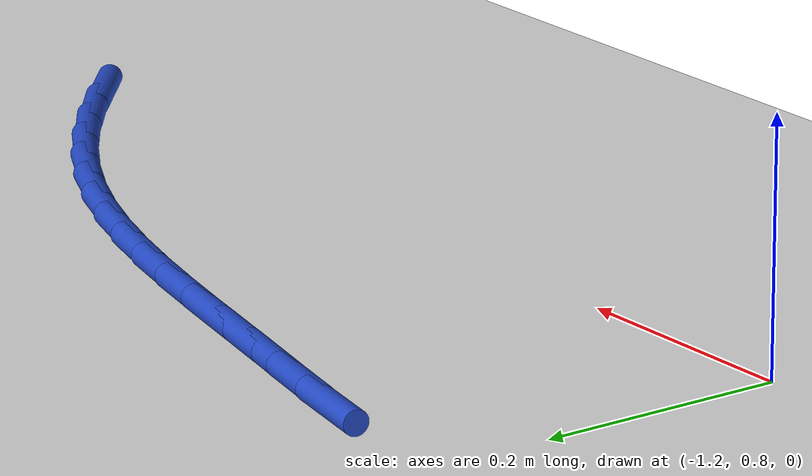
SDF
<sdf version="1.6">
 <world name="default">
  <model name="ground_plane">
   <static>1</static>
   <link name="link">
    <collision name="collision">
     <geometry><plane><normal>0 0 1</normal><size>100 100</size></plane></geometry>
     <surface><friction><ode><mu>100</mu><mu2>50</mu2></ode></friction></surface>
    </collision>
    <visual name="visual">
     <cast_shadows>0</cast_shadows>
     <geometry><plane><normal>0 0 1</normal><size>100 100</size></plane></geometry>
     <material>
      <script><uri>file://media/materials/scripts/gazebo.material</uri><name>Gazebo/WhiteGlow</name></script>
     </material>
    </visual>
   </link>
  </model>
  <model name="line">
   <link name="link_17">
    <pose>-0.35862236300749656 0.8041266889606733 0.01 0 1.57 -0.7351135516968258</pose>
    <collision name="collision">
     <geometry><cylinder><radius>0.01</radius><length>0.08</length></cylinder></geometry>
    </collision>
    <visual name="visual">
     <material>
      <script><name>Gazebo/Blue</name><uri>file://media/materials/scripts/gazebo.material</uri></script>
     </material>
     <geometry><cylinder><radius>0.01</radius><length>0.08</length></cylinder></geometry>
    </visual>
   </link>
   <link name="link_18">
    <pose>-0.39779615745345265 0.8395464126686468 0.01 0 1.57 -0.6795260207993966</pose>
    <collision name="collision">
     <geometry><cylinder><radius>0.01</radius><length>0.08</length></cylinder></geometry>
    </collision>
    <visual name="visual">
     <material>
      <script><name>Gazebo/Blue</name><uri>file://media/materials/scripts/gazebo.material</uri></script>
     </material>
     <geometry><cylinder><radius>0.01</radius><length>0.08</length></cylinder></geometry>
    </visual>
   </link>
   <link name="link_19">
    <pose>-0.43856839480594023 0.8724853958597595 0.01 0 1.57 -0.6207860752838431</pose>
    <collision name="collision">
     <geometry><cylinder><radius>0.01</radius><length>0.08</length></cylinder></geometry>
    </collision>
    <visual name="visual">
     <material>
      <script><name>Gazebo/Blue</name><uri>file://media/materials/scripts/gazebo.material</uri></script>
     </material>
     <geometry><cylinder><radius>0.01</radius><length>0.08</length></cylinder></geometry>
    </visual>
   </link>
   <link name="link_20">
    <pose>-0.48087628132389065 0.9027396125415432 0.01 0 1.57 -0.558639727614169</pose>
    <collision name="collision">
     <geometry><cylinder><radius>0.01</radius><length>0.08</length></cylinder></geometry>
    </collision>
    <visual name="visual">
     <material>
      <script><name>Gazebo/Blue</name><uri>file://media/materials/scripts/gazebo.material</uri></script>
     </material>
     <geometry><cylinder><radius>0.01</radius><length>0.08</length></cylinder></geometry>
    </visual>
   </link>
   <link name="link_21">
    <pose>-0.5246570232662353 0.9301050367215302 0.01 0 1.57 -0.4928959992295471</pose>
    <collision name="collision">
     <geometry><cylinder><radius>0.01</radius><length>0.08</length></cylinder></geometry>
    </collision>
    <visual name="visual">
     <material>
      <script><name>Gazebo/Blue</name><uri>file://media/materials/scripts/gazebo.material</uri></script>
     </material>
     <geometry><cylinder><radius>0.01</radius><length>0.08</length></cylinder></geometry>
    </visual>
   </link>
   <link name="link_22">
    <pose>-0.5698478268919056 0.9543776424072524 0.01 0 1.57 -0.42502470057587655</pose>
    <collision name="collision">
     <geometry><cylinder><radius>0.01</radius><length>0.08</length></cylinder></geometry>
    </collision>
    <visual name="visual">
     <material>
      <script><name>Gazebo/Blue</name><uri>file://media/materials/scripts/gazebo.material</uri></script>
     </material>
     <geometry><cylinder><radius>0.01</radius><length>0.08</length></cylinder></geometry>
    </visual>
   </link>
   <link name="link_23">
    <pose>-0.616379906627862 0.9754386625548046 0.01 0 1.57 -0.36405340370826095</pose>
    <collision name="collision">
     <geometry><cylinder><radius>0.01</radius><length>0.08</length></cylinder></geometry>
    </collision>
    <visual name="visual">
     <material>
      <script><name>Gazebo/Blue</name><uri>file://media/materials/scripts/gazebo.material</uri></script>
     </material>
     <geometry><cylinder><radius>0.01</radius><length>0.08</length></cylinder></geometry>
    </visual>
   </link>
   <link name="link_24">
    <pose>-0.664151303383952 0.9936413625809467 0.01 0 1.57 -0.31364829013943774</pose>
    <collision name="collision">
     <geometry><cylinder><radius>0.01</radius><length>0.08</length></cylinder></geometry>
    </collision>
    <visual name="visual">
     <material>
      <script><name>Gazebo/Blue</name><uri>file://media/materials/scripts/gazebo.material</uri></script>
     </material>
     <geometry><cylinder><radius>0.01</radius><length>0.08</length></cylinder></geometry>
    </visual>
   </link>
   <link name="link_25">
    <pose>-0.7130486417884164 1.0095014524053978 0.01 0 1.57 -0.27409654864663713</pose>
    <collision name="collision">
     <geometry><cylinder><radius>0.01</radius><length>0.08</length></cylinder></geometry>
    </collision>
    <visual name="visual">
     <material>
      <script><name>Gazebo/Blue</name><uri>file://media/materials/scripts/gazebo.material</uri></script>
     </material>
     <geometry><cylinder><radius>0.01</radius><length>0.08</length></cylinder></geometry>
    </visual>
   </link>
   <link name="link_26">
    <pose>-0.7629585359549432 1.023534791561488 0.01 0 1.57 -0.24535247551152709</pose>
    <collision name="collision">
     <geometry><cylinder><radius>0.01</radius><length>0.08</length></cylinder></geometry>
    </collision>
    <visual name="visual">
     <material>
      <script><name>Gazebo/Blue</name><uri>file://media/materials/scripts/gazebo.material</uri></script>
     </material>
     <geometry><cylinder><radius>0.01</radius><length>0.08</length></cylinder></geometry>
    </visual>
   </link>
   <link name="link_27">
    <pose>-0.8137675999972216 1.0362572395825482 0.01 0 1.57 -0.22718365126091186</pose>
    <collision name="collision">
     <geometry><cylinder><radius>0.01</radius><length>0.08</length></cylinder></geometry>
    </collision>
    <visual name="visual">
     <material>
      <script><name>Gazebo/Blue</name><uri>file://media/materials/scripts/gazebo.material</uri></script>
     </material>
     <geometry><cylinder><radius>0.01</radius><length>0.08</length></cylinder></geometry>
    </visual>
   </link>
   <link name="link_28">
    <pose>-0.8653624480289402 1.0481846560019095 0.01 0 1.57 -0.21927600647357923</pose>
    <collision name="collision">
     <geometry><cylinder><radius>0.01</radius><length>0.08</length></cylinder></geometry>
    </collision>
    <visual name="visual">
     <material>
      <script><name>Gazebo/Blue</name><uri>file://media/materials/scripts/gazebo.material</uri></script>
     </material>
     <geometry><cylinder><radius>0.01</radius><length>0.08</length></cylinder></geometry>
    </visual>
   </link>
   <link name="link_29">
    <pose>-0.9176296941637876 1.059832900352902 0.01 0 1.57 -0.22120747413519726</pose>
    <collision name="collision">
     <geometry><cylinder><radius>0.01</radius><length>0.08</length></cylinder></geometry>
    </collision>
    <visual name="visual">
     <material>
      <script><name>Gazebo/Blue</name><uri>file://media/materials/scripts/gazebo.material</uri></script>
     </material>
     <geometry><cylinder><radius>0.01</radius><length>0.08</length></cylinder></geometry>
    </visual>
   </link>
   <link name="link_30">
    <pose>-0.9704553928910042 1.0717127459736144 0.01 0 1.57 -0.2249444695835735</pose>
    <collision name="collision">
     <geometry><cylinder><radius>0.01</radius><length>0.08</length></cylinder></geometry>
    </collision>
    <visual name="visual">
     <material>
      <script><name>Gazebo/Blue</name><uri>file://media/materials/scripts/gazebo.material</uri></script>
     </material>
     <geometry><cylinder><radius>0.01</radius><length>0.08</length></cylinder></geometry>
    </visual>
   </link>
   <link name="link_31">
    <pose>-1.0236767153534334 1.083890685676879 0.01 0 1.57 -0.21687543573580165</pose>
    <collision name="collision">
     <geometry><cylinder><radius>0.01</radius><length>0.08</length></cylinder></geometry>
    </collision>
    <visual name="visual">
     <material>
      <script><name>Gazebo/Blue</name><uri>file://media/materials/scripts/gazebo.material</uri></script>
     </material>
     <geometry><cylinder><radius>0.01</radius><length>0.08</length></cylinder></geometry>
    </visual>
   </link>
   <link name="link_32">
    <pose>-1.0770446376606957 1.0956498212547123 0.01 0 1.57 -0.19544966490830307</pose>
    <collision name="collision">
     <geometry><cylinder><radius>0.01</radius><length>0.08</length></cylinder></geometry>
    </collision>
    <visual name="visual">
     <material>
      <script><name>Gazebo/Blue</name><uri>file://media/materials/scripts/gazebo.material</uri></script>
     </material>
     <geometry><cylinder><radius>0.01</radius><length>0.08</length></cylinder></geometry>
    </visual>
   </link>
  </model>
 </world>
</sdf>
